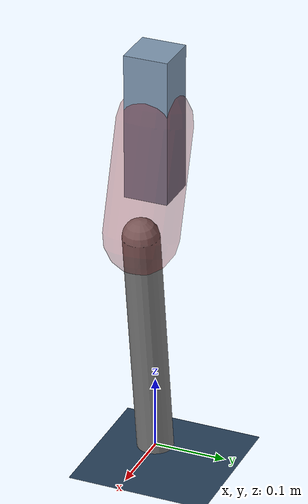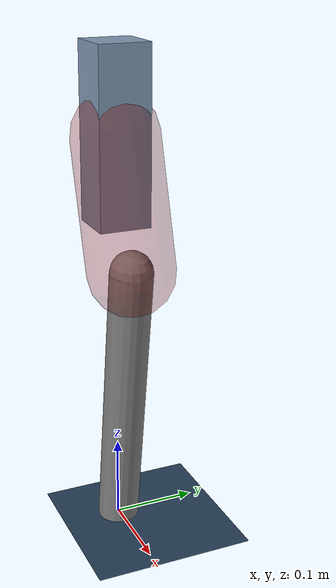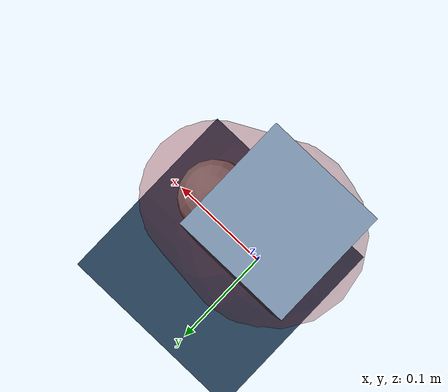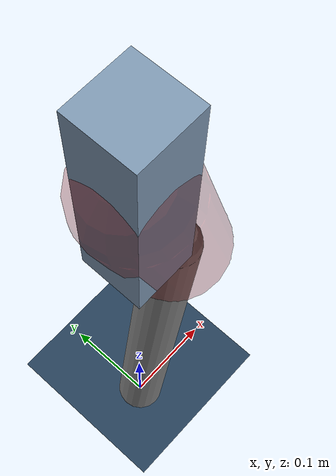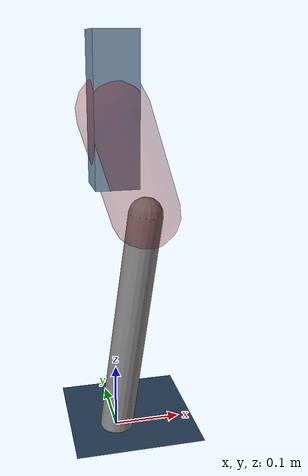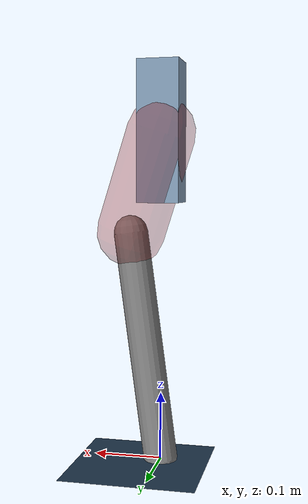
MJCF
<mujoco model="Hopper2D">
	<compiler inertiafromgeom="true" angle="radian" />
	<option timestep="0.001" integrator="implicit" cone="elliptic" solver="Newton" tolerance="1e-10" />

	<default>
		<geom contype="1" conaffinity="1" condim="3" friction="2 0.005 0.0001" solref="0.005 1" />
		<joint limited="true" damping="0.1" />
	</default>

	<asset>
		<texture name="skybox" type="skybox" builtin="gradient" rgb1=".4 .6 .8" rgb2="0 0 0" width="800" height="800" />
		<texture name="grid" type="2d" builtin="checker" rgb1=".1 .2 .3" rgb2=".2 .3 .4" width="300" height="300" mark="edge" markrgb=".2 .3 .4" />
		<material name="ground" texture="grid" texrepeat="1 1" texuniform="true" reflectance="0.1" />
		<material name="leg" rgba="0.5 0.6 0.7 1" />
	</asset>

	<worldbody>

		<geom name="floor" type="plane" size="5 5 0.25" material="ground" />

		<light directional="false" diffuse="0.8 0.8 0.8" specular="0.3 0.3 0.3" pos="0 0 2" dir="0 0 -1" />
		<light mode="targetbodycom" target="base" directional="false" diffuse="0.8 0.8 0.8" specular="0.3 0.3 0.3" pos="0 0 2" dir="0 0 -1" />

		<camera name="fixed" pos="0 -2 1" xyaxes="1 0 0 0 0 1" />
		<camera name="tracking" mode="trackcom" pos="0 -3 1" />

		<body name="root" pos="0 0 0.4811737746254484">
			<joint name="slide_x" type="slide" axis="1 0 0" range="-100 100" />
			<joint name="slide_z" type="slide" axis="0 0 1" range="0 10" />

			<body name="base" pos="0 0 0">
				<geom name="torso" type="box" size="0.03 0.03 0.1" mass="1.935" material="leg" />

				<body name="link1" pos="0 0 0" euler="0 1.265113819617473 0">
					<joint type="hinge" axis="0 -1 0" pos="0 0 0" name="hinge1" limited="true" range="-3.14 3.14" stiffness="0" damping="0.1" />
					<geom name="thigh" type="capsule" fromto="0 0 0 0.1504885619764114 0 0" size="0.05" rgba="0.5 0 0 0.3" mass="0.6096725487433874" />

					<body name="link2" pos="0.1504885619764114 0 0" euler="0 0.43901117259463446 0">
						<joint type="hinge" axis="0 -1 0" pos="0 0 0" name="hinge2" limited="true" range="-3.14 3.14" stiffness="0" damping="0.1" />
						<geom name="shank" type="capsule" fromto="0 0 0 0.340685212649037 0 0" size="0.025" mass="0.5164481701192296" />

					</body>
				</body>
			</body>
		</body>
	</worldbody>

	<actuator>
		<motor name="torque1" joint="hinge1" ctrlrange="-33.02799523559589 33.02799523559589" ctrllimited="true" gear="1" />
		<motor name="torque2" joint="hinge2" ctrlrange="-23.854847673323693 23.854847673323693" ctrllimited="true" gear="1" />
	</actuator>
</mujoco>
